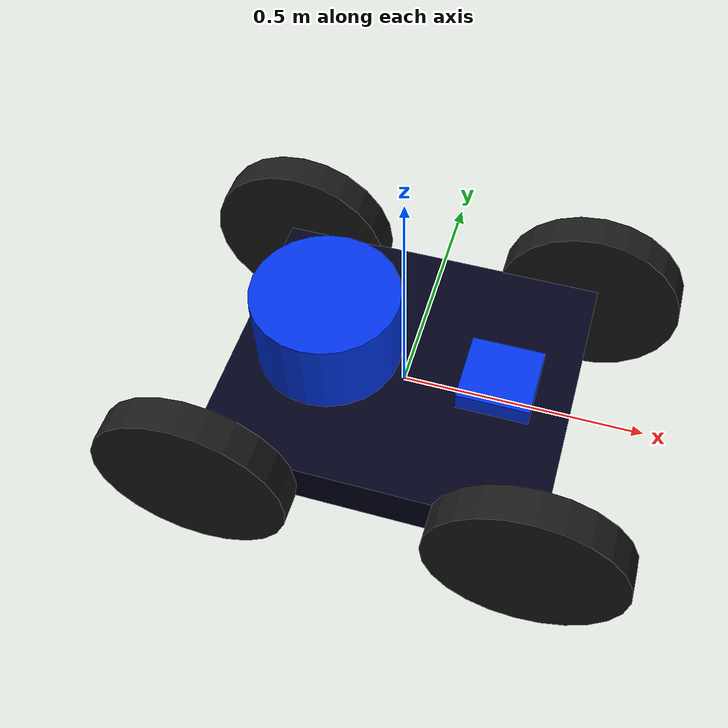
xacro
<?xml version="1.0"?>
<robot name="BMW_Car" xmlns:xacro="http://www.ros.org/wiki/xacro">

  <xacro:include filename="BMW_core.xacro"/>
  <xacro:include filename="gazebo_control.xacro"/>
  <xacro:include filename="lidar.xacro"/>
  <xacro:include filename="camera.xacro"/>

</robot>

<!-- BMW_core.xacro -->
<robot xmlns:xacro="http://www.ros.org/wiki/xacro">

    <xacro:include filename="inertial_macros.xacro"/>

    <xacro:property name="wheel_mass" value="0.05"/>

    <material name="blue">
        <color rgba="0 0.2 0.9 1"/>
    </material>

    <material name="gray">
        <color rgba="0.1 0.1 0.1 1"/>
    </material>

    <material name="darkBlue">
        <color rgba="0 0 0.1 1"/>
    </material>

    <link name="dummy_link"/>

    <!-- Chassis -->
    <link name="chassis">
        <visual>
            <geometry>
                <box size="0.6 0.7 0.1"/>
            </geometry>
            <origin rpy="0 0 1.57" xyz="0 0 0"/>
            <material name="darkBlue"/>
        </visual>

        <collision>
            <geometry>
                <box size="0.6 0.7 0.1"/>
            </geometry>
            <origin rpy="0 0 1.57" xyz="0 0 0"/>
        </collision>

        <xacro:inertial_box mass="0.1" x="0.6" y="0.7" z="0.1">
            <origin rpy="0 0 1.57" xyz="0 0 0"/>
        </xacro:inertial_box>

    </link>

    <joint name="chassis_joint" type="fixed">
        <parent link="dummy_link"/>
        <child link="chassis"/>
        <origin xyz="0 0 0"/>
    </joint>

    <gazebo reference="chassis">
        <material>Gazebo/DarkMagentaTransparent</material>
    </gazebo>

    <!-- Front Left Wheel -->
    <link name="LB_wheel">
        <visual>
            <geometry>
                <cylinder radius="0.2" length="0.07"/>
            </geometry>
            <material name="gray"/>
        </visual>

        <collision>
            <geometry>
                <sphere radius="0.2"/>
            </geometry>
        </collision>

        <xacro:inertial_cylinder mass="${wheel_mass}" length="0.07" radius="0.2">
            <origin xyz="0 0 0" rpy="0 0 0"/>
        </xacro:inertial_cylinder>
    </link>

    <joint name="LB_wheel_joint" type="continuous">
        <parent link="chassis"/>
        <child link="LB_wheel"/>
        <origin rpy="0 1.57 -1.57" xyz="-0.333 0.333 0"/>
        <axis xyz="0 0 -1"/>
    </joint>

    <gazebo reference="LB_wheel">
        <material>Gazebo/Gray</material>
        <mu1 value="0.2"/>
        <mu2 value="0.2"/>
    </gazebo>

    <!-- Back Left wheel -->
    <link name="RB_wheel">
        <visual>
            <geometry>
                <cylinder radius="0.2" length="0.07"/>
            </geometry>

            <material name="gray"/>
        </visual>

        <collision>
            <geometry>
                <sphere radius="0.2"/>
            </geometry>
        </collision>

        <xacro:inertial_cylinder mass="${wheel_mass}" length="0.07" radius="0.2">
            <origin xyz="0 0 0" rpy="0 0 0"/>
        </xacro:inertial_cylinder>
    </link>

    <joint name="RB_wheel_joint" type="continuous">
        <parent link="chassis"/>
        <child link="RB_wheel"/>
        <origin rpy="0 1.57 -1.57" xyz="-0.333 -0.333 0"/>
        <axis xyz="0 0 -1"/>
    </joint>

    <gazebo reference="RB_wheel">
        <material>Gazebo/Gray</material>
        <mu1 value="0.2"/>
        <mu2 value="0.2"/>
    </gazebo>

    <!-- Front Right Wheel -->
    <link name="LF_wheel">
        <visual>
            <geometry>
                <cylinder radius="0.2" length="0.07"/>
            </geometry>
            <material name="gray"/>
        </visual>

        <collision>
            <geometry>
                <sphere radius="0.2"/>
            </geometry>
        </collision>

        <xacro:inertial_cylinder mass="${wheel_mass}" length="0.07" radius="0.2">
            <origin xyz="0 0 0" rpy="0 0 0"/>
        </xacro:inertial_cylinder>

    </link>

    <joint name="LF_wheel_joint" type="continuous">
        <parent link="chassis"/>
        <child link="LF_wheel"/>
        <origin rpy="0 1.57 -1.57" xyz="0.333 0.333 0"/>
        <axis xyz="0 0 -1"/>
    </joint>

    <gazebo reference="LF_wheel">
        <material>Gazebo/Gray</material>
        <mu1 value="0.2"/>
        <mu2 value="0.2"/>
    </gazebo>

    <!-- Back Right Wheel -->
    <link name="RF_wheel">
        <visual>
            <geometry>
                <cylinder radius="0.2" length="0.07"/>
            </geometry>
            <material name="gray"/>
        </visual>

        <collision>
            <geometry>
                <sphere radius="0.2"/>
            </geometry>
        </collision>

        <xacro:inertial_cylinder mass="${wheel_mass}" length="0.07" radius="0.2">
            <origin xyz="0 0 0" rpy="0 0 0"/>
        </xacro:inertial_cylinder>
    </link>

    <joint name="RF_wheel_joint" type="continuous">
        <parent link="chassis"/>
        <child link="RF_wheel"/>
        <origin rpy="0 1.57 -1.57" xyz="0.333 -0.333 0"/>
        <axis xyz="0 0 -1"/>
    </joint>

    <gazebo reference="RF_wheel">
        <material>Gazebo/Gray</material>
        <mu1 value="0.2"/>
        <mu2 value="0.2"/>
    </gazebo>

    <!-- Lidar -->
    <link name="lidar">
        <visual>
            <geometry>
                <cylinder radius="0.15" length="0.25"/>
            </geometry>
            <origin rpy="0 0 0" xyz="-0.16 0 0.1"/>
            <material name="blue"/>
        </visual>

        <collision>
            <geometry>
                <cylinder radius="0.15" length="0.25"/>
            </geometry>
            <origin rpy="0 0 0" xyz="-0.16 0 0.1"/>
        </collision>

        <xacro:inertial_cylinder mass="0.1" length="0.25" radius="0.15">
            <origin rpy="0 0 0" xyz="-0.16 0 0.1"/>
        </xacro:inertial_cylinder>

    </link>

    <joint name="lidar_joint" type="fixed">
        <parent link="chassis"/>
        <child link="lidar"/>
        <origin rpy="0 0 0" xyz="0 0 0"/>
    </joint>

    <gazebo reference="lidar">
        <material>Gazebo/Indigo</material>
    </gazebo>

    <!-- Camera-->
    <link name="camera">
        <visual>
            <geometry>
                <box size="0.15 0.15 0.08"/>
            </geometry>
            <origin rpy="0 0 0" xyz="0.2 0 0.05"/>
            <material name="blue"/>
        </visual>

        <collision>
            <geometry>
                <box size="0.15 0.15 0.08"/>
            </geometry>
            <origin rpy="0 0 0" xyz="0.2 0 0.05"/>
        </collision>

        <xacro:inertial_box mass="0.05" x="0.15" y="0.15" z="0.08">
            <origin rpy="0 0 0" xyz="0 0 0"/>
        </xacro:inertial_box>
    </link>

    <joint name="camera_joint" type="fixed">
        <parent link="chassis"/>
        <child link="camera"/>
        <origin rpy="0 0 0" xyz="0 0 0"/>
    </joint>

    <gazebo reference="camera">
        <material>Gazebo/Indigo</material>
    </gazebo>
 </robot>

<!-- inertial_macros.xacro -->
<robot xmlns:xacro="http://www.ros.org/wiki/xacro">

  <xacro:macro name="inertial_sphere" params="mass radius *origin">
    <inertial>
      <xacro:inert_block name="origin"/>
      <mass value="${mass}" />
      <inertia ixx="${(2/5) * mass * (radius*radius)}" ixy="0.0" ixz="0.0"
      iyy="${(2/5) * mass * (radius*radius)}" iyz="0.0"
      izz="${(2/5) * mass * (radius*radius)}" />
    </inertial>
  </xacro:macro>

  <xacro:macro name="inertial_box" params="mass x y z *origin">
    <inertial>
      <xacro:insert_block name="origin"/>
      <mass value="${mass}" />
      <inertia ixx="${(1/12) * mass * (y*y+z*z)}" ixy="0.0" ixz="0.0"
              iyy="${(1/12) * mass * (x*x+z*z)}" iyz="0.0"
              izz="${(1/12) * mass * (x*x+y*y)}" />
    </inertial>
  </xacro:macro>

  <xacro:macro name="inertial_cylinder" params="mass length radius *origin">
    <inertial>
      <xacro:insert_block name="origin"/>
      <mass value="${mass}" />
      <inertia ixx="${(1/12) * mass * (3*radius*radius + length*length)}" ixy="0.0" ixz="0.0"
              iyy="${(1/12) * mass * (3*radius*radius + length*length)}" iyz="0.0"
              izz="${(1/2) * mass * (radius*radius)}" />
    </inertial>
  </xacro:macro>

</robot>
